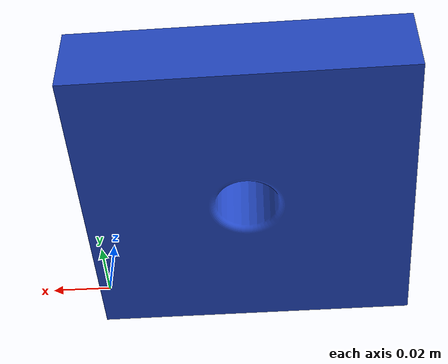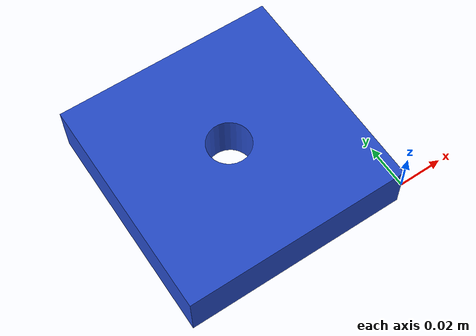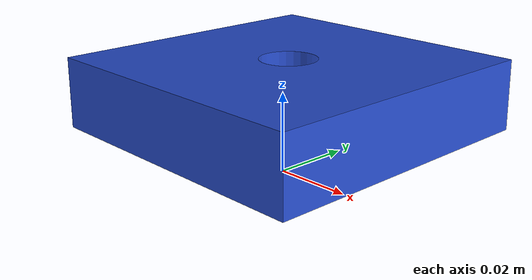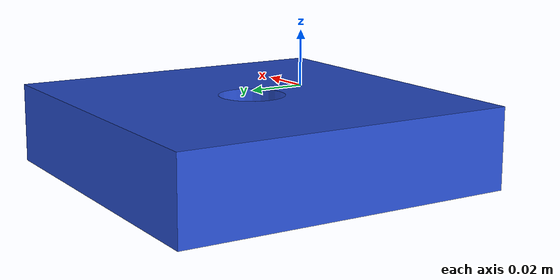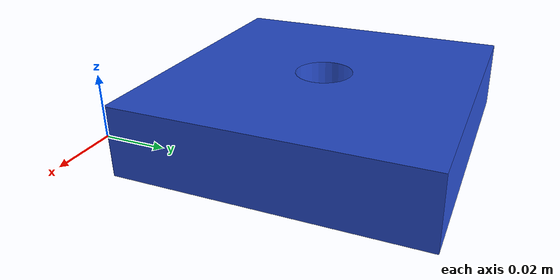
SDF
<?xml version='1.0'?>
<sdf version='1.6'>
  <model name='multi_peg_board'>
    <static>true</static>
    <link name='board'>
      <pose frame=''>0 0 0.01 0 3.14159 1.5707</pose>
      <self_collide>0</self_collide>
      <kinematic>0</kinematic>
      <gravity>1</gravity>
      <inertial>
        <mass>1</mass>
        <pose frame=''>0 0 0 0 0 0</pose>
        <inertia>
          <ixx>0.999223</ixx>
          <ixy>0.039421</ixy>
          <ixz>0.000141</ixz>
          <iyy>0.999222</iyy>
          <iyz>-0.001474</iyz>
          <izz>0.999999</izz>
        </inertia>
      </inertial>
      <visual name='visual'>
        <transparency> 0.1 </transparency>
        <pose frame=''>0 0 0 0 0 0</pose>
        <geometry>
          <mesh>
            <uri>model://multi_peg_board/meshes/board.dae</uri>
              <scale>1.02 1.02 .8</scale>
          </mesh>
        </geometry>
        <material>
          <script>
            <uri>model://media/materials/scripts/gazebo.material</uri>
            <name>Gazebo/Blue</name>
          </script>
        </material>
        <transparency>0</transparency>
        <cast_shadows>1</cast_shadows>
      </visual>
      <collision name='collision'>
        <pose frame=''>0 0 0 0 0 0</pose>
        <laser_retro>0</laser_retro>
        <max_contacts>10</max_contacts>
        <geometry>
          <mesh>
            <uri>model://multi_peg_board/meshes/board.dae</uri>
            <scale>1.02 1.02 0.8</scale>
          </mesh>
        </geometry>
        <surface>
          <friction>
            <ode>
              <mu>1</mu>
              <mu2>1</mu2>
              <fdir1>0 0 0</fdir1>
              <slip1>0.1</slip1>
              <slip2>0.1</slip2>
            </ode>
            <torsional>
              <coefficient>1</coefficient>
              <patch_radius>0</patch_radius>
              <surface_radius>0</surface_radius>
              <use_patch_radius>1</use_patch_radius>
              <ode>
                <slip>0</slip>
              </ode>
            </torsional>
          </friction>
          <bounce>
            <restitution_coefficient>0</restitution_coefficient>
            <threshold>1e+06</threshold>
          </bounce>
          <contact>
            <collide_without_contact>0</collide_without_contact>
            <collide_without_contact_bitmask>1</collide_without_contact_bitmask>
            <collide_bitmask>1</collide_bitmask>
            <ode>
              <soft_cfm>0.01</soft_cfm>
              <soft_erp>0.2</soft_erp>
              <kp>1e+13</kp>
              <kd>1</kd>
              <max_vel>0.01</max_vel>
              <min_depth>0</min_depth>
            </ode>
            <bullet>
              <split_impulse>1</split_impulse>
              <split_impulse_penetration_threshold>-0.01</split_impulse_penetration_threshold>
              <soft_cfm>0</soft_cfm>
              <soft_erp>0.1</soft_erp>
              <kp>1e+13</kp>
              <kd>1</kd>
            </bullet>
          </contact>
        </surface>
      </collision>
    </link>
    <static>1</static>
    <allow_auto_disable>1</allow_auto_disable>
  </model>
</sdf>
